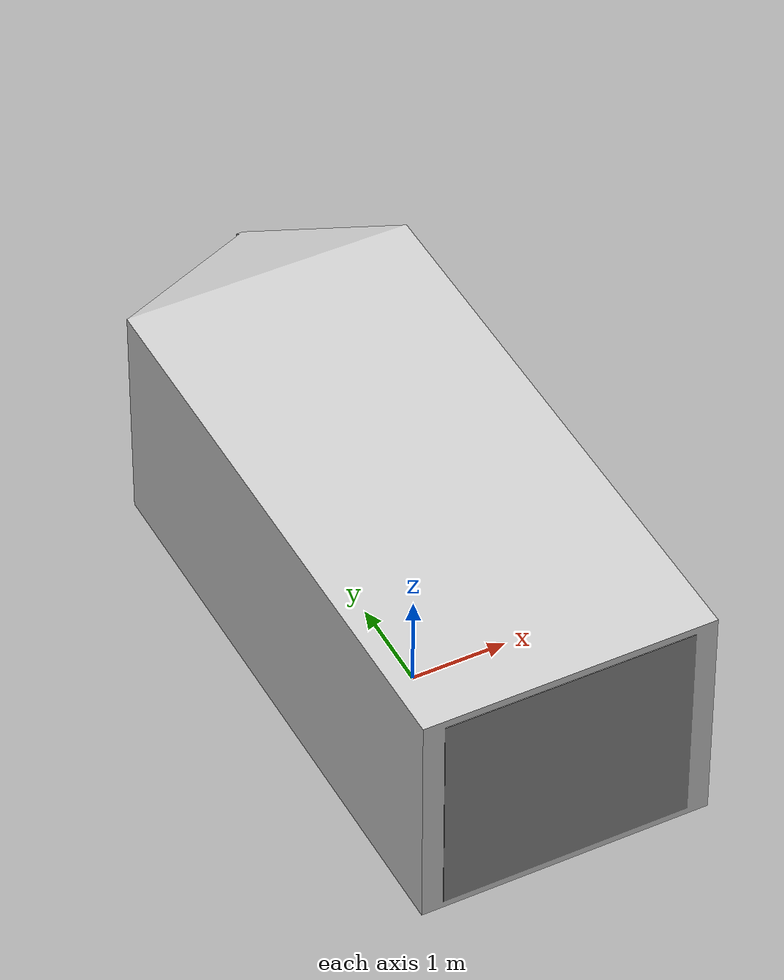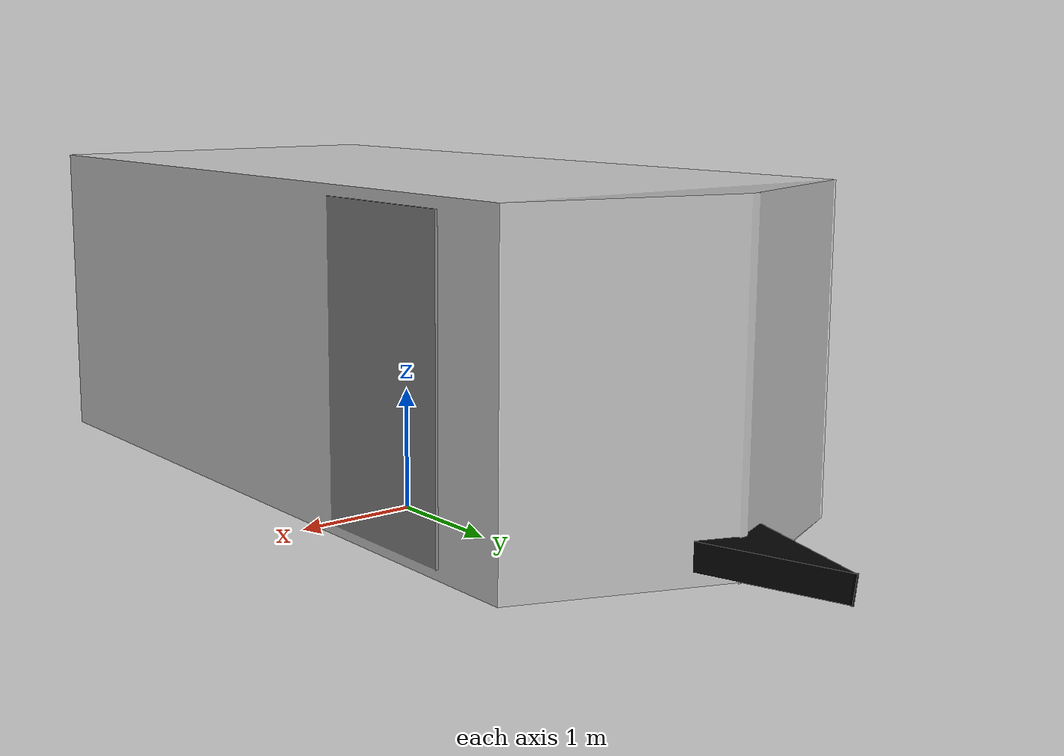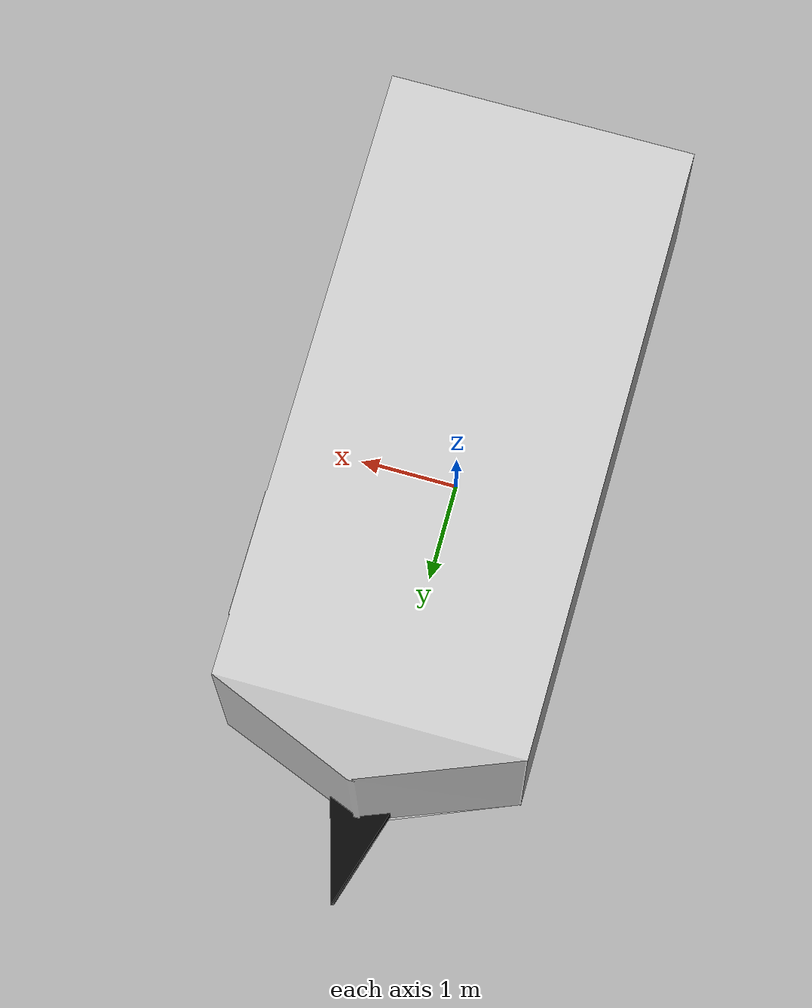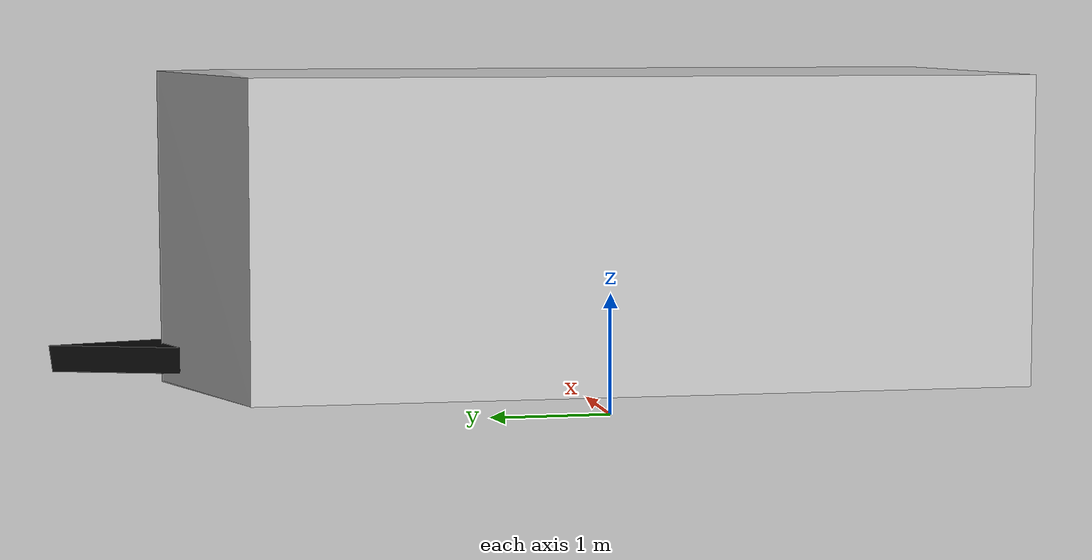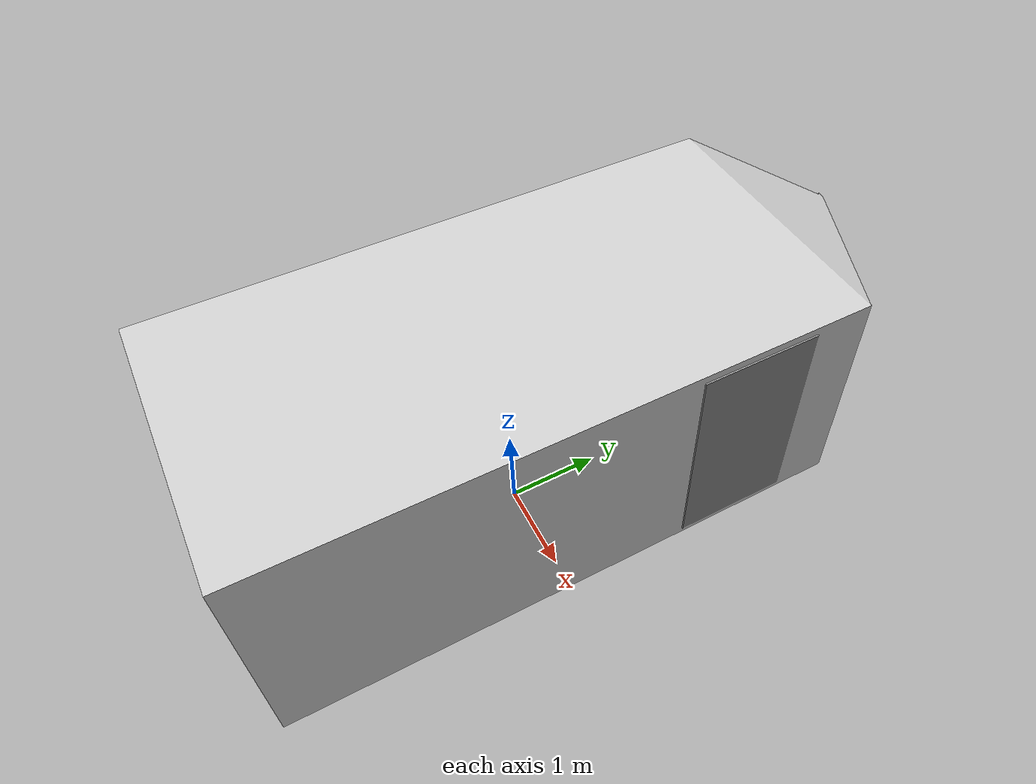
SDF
<?xml version="1.0" ?>
<sdf version="1.5">
  <model name="SOAR Trailer">
    <static>true</static>
    <pose>0 0 0 0 0 0</pose>
    <link name="link">
      <collision name="collision">
        <geometry>
          <mesh>
            <uri>model://soar_trailer/meshes/soar_trailer.dae</uri>
            <scale>1 1 1</scale>
          </mesh>
        </geometry>
      </collision>
      <visual name="visual">
        <geometry>
          <mesh>
            <uri>model://soar_trailer/meshes/soar_trailer.dae</uri>
            <scale>1 1 1</scale>
          </mesh>
        </geometry>
      </visual>
    </link>
  </model>
</sdf>
